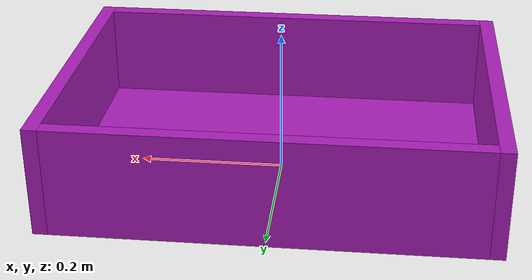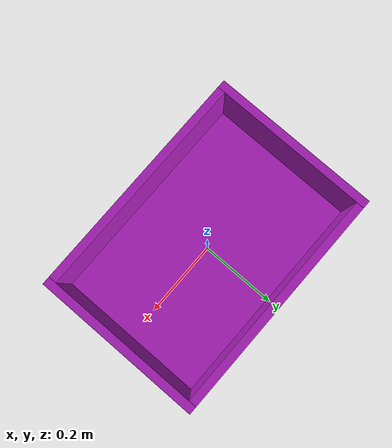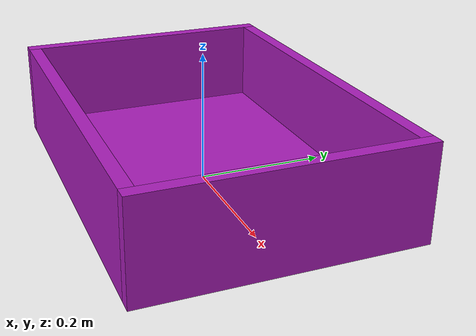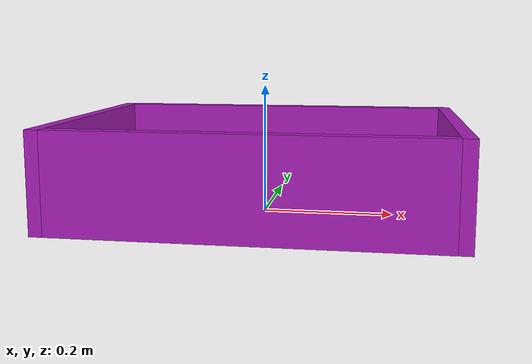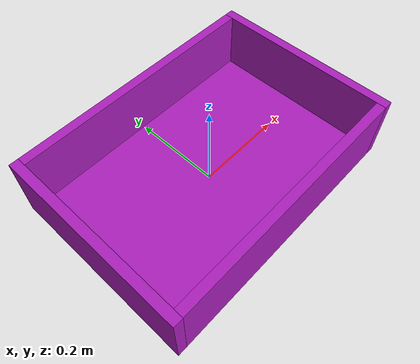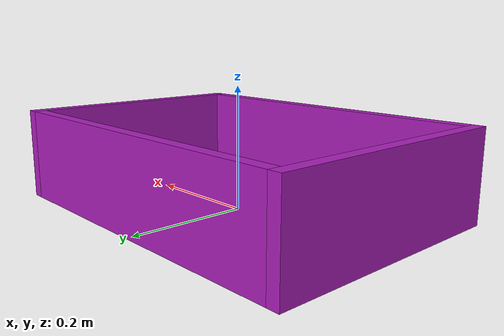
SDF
<?xml version="1.0"?>
<sdf version="1.7">
  <model name="bin_model">
    <link name="bin_base">
      <inertial>
        <mass>18.70</mass>
        <inertia>
          <ixx>0.79</ixx>
          <ixy>0</ixy>
          <ixz>0</ixz>
          <iyy>0.53</iyy>
          <iyz>0</iyz>
          <izz>1.2</izz>
        </inertia>
      </inertial>
      <visual name="visual_front">
        <pose>0.29 0 0.075 0 0 0</pose>
        <geometry>
          <box>
            <size>0.02 0.42 0.15</size>
          </box>
        </geometry>
        <material>
          <diffuse>0.67 0.12 0.73 1.0</diffuse>
        </material>
      </visual>
      <collision
        name="collision_front">
        <pose>0.29 0 0.075 0 0 0</pose>
        <geometry>
          <box>
            <size>0.02 0.42 0.15</size>
          </box>
        </geometry>
      </collision>
      <visual
        name="visual_back">
        <pose>-0.29 0 0.075 0 0 0</pose>
        <geometry>
          <box>
            <size>0.02 0.42 0.15</size>
          </box>
        </geometry>
        <material>
          <diffuse>0.67 0.12 0.73 1.0</diffuse>
        </material>
      </visual>
      <collision
        name="collision_back">
        <pose>-0.29 0 0.075 0 0 0</pose>
        <geometry>
          <box>
            <size>0.02 0.42 0.15</size>
          </box>
        </geometry>
      </collision>
      <visual
        name="visual_bottom">
        <pose>0 0 0.01 0 0 0</pose>
        <geometry>
          <box>
            <size>0.56 0.38 0.02</size>
          </box>
        </geometry>
        <material>
          <diffuse>0.67 0.12 0.73 1.0</diffuse>
        </material>
      </visual>
      <collision
        name="collision_bottom">
        <pose>0 0 0.01 0 0 0</pose>
        <geometry>
          <box>
            <size>0.56 0.38 0.02</size>
          </box>
        </geometry>
      </collision>

      <visual
        name="visual_left">
        <pose>0 -0.2 0.075 0 0 0</pose>
        <geometry>
          <box>
            <size>0.56 0.02 0.15</size>
          </box>
        </geometry>
        <material>
          <diffuse>0.67 0.12 0.73 1.0</diffuse>
        </material>
      </visual>
      <collision
        name="collision_left">
        <pose>0 -0.2 0.075 0 0 0</pose>
        <geometry>
          <box>
            <size>0.56 0.02 0.15</size>
          </box>
        </geometry>
      </collision>
      <visual
        name="visual_right">
        <pose>0 0.2 0.075 0 0 0</pose>
        <geometry>
          <box>
            <size>0.56 0.02 0.15</size>
          </box>
        </geometry>
        <material>
          <diffuse>0.67 0.12 0.73 1.0</diffuse>
        </material>
      </visual>
      <collision
        name="collision_right">
        <pose>0 0.2 0.075 0 0 0</pose>
        <geometry>
          <box>
            <size>0.56 0.02 0.15</size>
          </box>
        </geometry>
      </collision>
    </link>
  </model>
</sdf>
